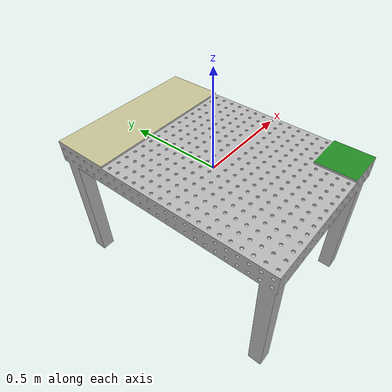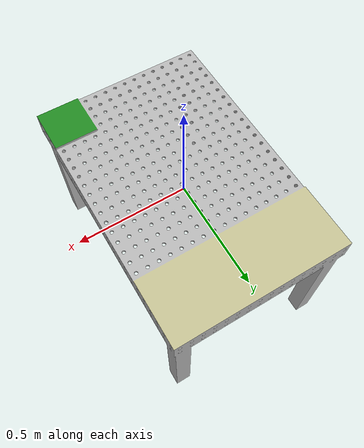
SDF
<?xml version='1.0'?>
<sdf version='1.6'>
  <model name='table'>
    <link name='link_table'>
      <inertial>
        <mass>10</mass>
        <inertia>
          <ixx>0.166667</ixx>
          <ixy>0</ixy>
          <ixz>0</ixz>
          <iyy>0.166667</iyy>
          <iyz>0</iyz>
          <izz>0.166667</izz>
        </inertia>
        <pose>0 0 0 0 -0 0</pose>
      </inertial>
      <pose>0 0 0 0 -0 0</pose>
      <gravity>1</gravity>
      <self_collide>0</self_collide>
      <kinematic>0</kinematic>
      <enable_wind>0</enable_wind>
      <visual name='visual'>
        <pose>0 0 0 0 -0 0</pose>
        <geometry>
          <mesh>
            <uri>model://table/table.dae</uri>
            <scale>1 1 1</scale>
          </mesh>
        </geometry>
        <transparency>0</transparency>
        <cast_shadows>1</cast_shadows>
      </visual>
      <collision name='collision'>
        <laser_retro>0</laser_retro>
        <max_contacts>10</max_contacts>
        <pose>0 0 0 0 -0 0</pose>
        <geometry>
          <mesh>
            <uri>model://table/table.stl</uri>
            <scale>1 1 1</scale>
          </mesh>
        </geometry>
        <surface>
          <friction>
            <ode>
              <mu>10</mu>
              <mu2>10</mu2>
              <fdir1>0 0 0</fdir1>
              <slip1>0.0</slip1>
              <slip2>0.0</slip2>
            </ode>
            <torsional>
              <coefficient>1</coefficient>
              <patch_radius>0</patch_radius>
              <surface_radius>0</surface_radius>
              <use_patch_radius>1</use_patch_radius>
              <ode>
                <slip>0</slip>
              </ode>
            </torsional>
          </friction>
          <bounce>
            <restitution_coefficient>0</restitution_coefficient>
            <threshold>1e+06</threshold>
          </bounce>
          <contact>
            <collide_without_contact>0</collide_without_contact>
            <collide_without_contact_bitmask>1</collide_without_contact_bitmask>
            <collide_bitmask>1</collide_bitmask>
            <ode>
              <soft_cfm>0</soft_cfm>
              <soft_erp>0.2</soft_erp>
              <kp>1e+13</kp>
              <kd>1</kd>
              <max_vel>0.01</max_vel>
              <min_depth>0</min_depth>
            </ode>
          </contact>
        </surface>
      </collision>
    </link>
    <static>1</static>
    <allow_auto_disable>1</allow_auto_disable>
  </model>
</sdf>
